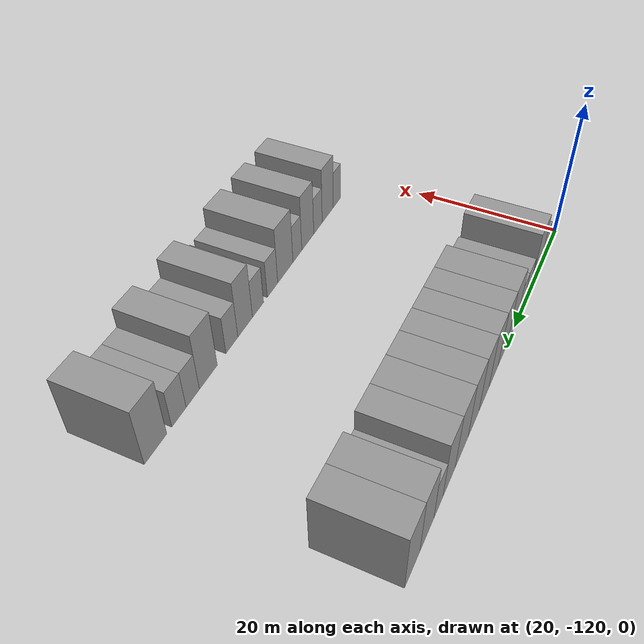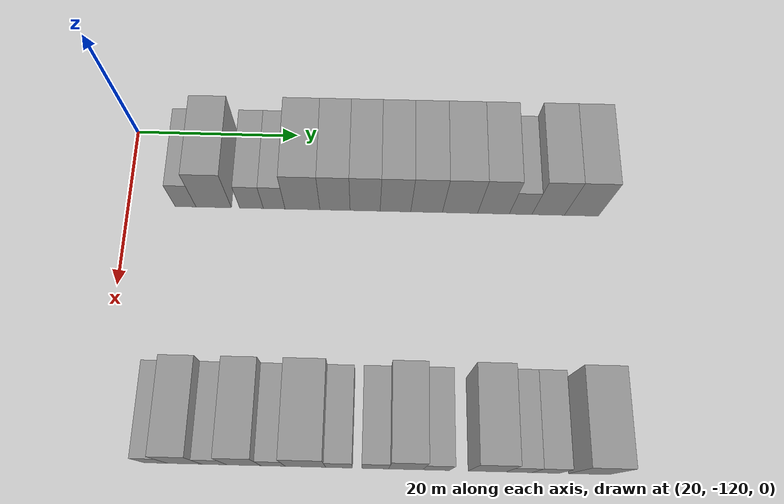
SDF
<sdf version="1.6">
 <world name="default">
  <model name="building_30">
   <static>1</static>
   <pose>25.0000 -113.0198 0 0.000000 0.000000 0.000000</pose>
   <link name="link">
    <pose>0 0 3.00 0 0 0</pose>
    <collision name="collision"><geometry><box><size>10.0000 2.5243 6.0000</size></box></geometry></collision>
    <visual name="visual">
     <cast_shadows>0</cast_shadows>
     <geometry><box><size>10.0000 2.5243 6.0000</size></box></geometry>
     <material>
      <script>
       <uri>model://grey_wall/materials/scripts</uri>
       <uri>model://grey_wall/materials/textures</uri>
       <name>vrc/grey_wall</name>
      </script>
     </material>
    </visual>
   </link>
  </model>
  <model name="building_31">
   <static>1</static>
   <pose>25.0000 -109.6110 0 0.000000 0.000000 0.000000</pose>
   <link name="link">
    <pose>0 0 4.50 0 0 0</pose>
    <collision name="collision"><geometry><box><size>10.0000 4.2934 9.0000</size></box></geometry></collision>
    <visual name="visual">
     <cast_shadows>0</cast_shadows>
     <geometry><box><size>10.0000 4.2934 9.0000</size></box></geometry>
     <material>
      <script>
       <uri>model://grey_wall/materials/scripts</uri>
       <uri>model://grey_wall/materials/textures</uri>
       <name>vrc/grey_wall</name>
      </script>
     </material>
    </visual>
   </link>
  </model>
  <model name="building_32">
   <static>1</static>
   <pose>25.0000 -105.0264 0 0.000000 0.000000 0.000000</pose>
   <link name="link">
    <pose>0 0 3.00 0 0 0</pose>
    <collision name="collision"><geometry><box><size>10.0000 2.8757 6.0000</size></box></geometry></collision>
    <visual name="visual">
     <cast_shadows>0</cast_shadows>
     <geometry><box><size>10.0000 2.8757 6.0000</size></box></geometry>
     <material>
      <script>
       <uri>model://grey_wall/materials/scripts</uri>
       <uri>model://grey_wall/materials/textures</uri>
       <name>vrc/grey_wall</name>
      </script>
     </material>
    </visual>
   </link>
  </model>
  <model name="building_33">
   <static>1</static>
   <pose>25.0000 -102.2784 0 0.000000 0.000000 0.000000</pose>
   <link name="link">
    <pose>0 0 3.00 0 0 0</pose>
    <collision name="collision"><geometry><box><size>10.0000 2.6205 6.0000</size></box></geometry></collision>
    <visual name="visual">
     <cast_shadows>0</cast_shadows>
     <geometry><box><size>10.0000 2.6205 6.0000</size></box></geometry>
     <material>
      <script>
       <uri>model://grey_wall/materials/scripts</uri>
       <uri>model://grey_wall/materials/textures</uri>
       <name>vrc/grey_wall</name>
      </script>
     </material>
    </visual>
   </link>
  </model>
  <model name="building_34">
   <static>1</static>
   <pose>25.0000 -98.8561 0 0.000000 0.000000 0.000000</pose>
   <link name="link">
    <pose>0 0 4.50 0 0 0</pose>
    <collision name="collision"><geometry><box><size>10.0000 4.2241 9.0000</size></box></geometry></collision>
    <visual name="visual">
     <cast_shadows>0</cast_shadows>
     <geometry><box><size>10.0000 4.2241 9.0000</size></box></geometry>
     <material>
      <script>
       <uri>model://grey_wall/materials/scripts</uri>
       <uri>model://grey_wall/materials/textures</uri>
       <name>vrc/grey_wall</name>
      </script>
     </material>
    </visual>
   </link>
  </model>
  <model name="building_35">
   <static>1</static>
   <pose>25.0000 -94.9230 0 0.000000 0.000000 0.000000</pose>
   <link name="link">
    <pose>0 0 4.50 0 0 0</pose>
    <collision name="collision"><geometry><box><size>10.0000 3.6422 9.0000</size></box></geometry></collision>
    <visual name="visual">
     <cast_shadows>0</cast_shadows>
     <geometry><box><size>10.0000 3.6422 9.0000</size></box></geometry>
     <material>
      <script>
       <uri>model://grey_wall/materials/scripts</uri>
       <uri>model://grey_wall/materials/textures</uri>
       <name>vrc/grey_wall</name>
      </script>
     </material>
    </visual>
   </link>
  </model>
  <model name="building_36">
   <static>1</static>
   <pose>25.0000 -91.2906 0 0.000000 0.000000 0.000000</pose>
   <link name="link">
    <pose>0 0 4.50 0 0 0</pose>
    <collision name="collision"><geometry><box><size>10.0000 3.6224 9.0000</size></box></geometry></collision>
    <visual name="visual">
     <cast_shadows>0</cast_shadows>
     <geometry><box><size>10.0000 3.6224 9.0000</size></box></geometry>
     <material>
      <script>
       <uri>model://grey_wall/materials/scripts</uri>
       <uri>model://grey_wall/materials/textures</uri>
       <name>vrc/grey_wall</name>
      </script>
     </material>
    </visual>
   </link>
  </model>
  <model name="building_37">
   <static>1</static>
   <pose>25.0000 -87.6306 0 0.000000 0.000000 0.000000</pose>
   <link name="link">
    <pose>0 0 4.50 0 0 0</pose>
    <collision name="collision"><geometry><box><size>10.0000 3.6977 9.0000</size></box></geometry></collision>
    <visual name="visual">
     <cast_shadows>0</cast_shadows>
     <geometry><box><size>10.0000 3.6977 9.0000</size></box></geometry>
     <material>
      <script>
       <uri>model://grey_wall/materials/scripts</uri>
       <uri>model://grey_wall/materials/textures</uri>
       <name>vrc/grey_wall</name>
      </script>
     </material>
    </visual>
   </link>
  </model>
  <model name="building_38">
   <static>1</static>
   <pose>25.0000 -83.8737 0 0.000000 0.000000 0.000000</pose>
   <link name="link">
    <pose>0 0 4.50 0 0 0</pose>
    <collision name="collision"><geometry><box><size>10.0000 3.8162 9.0000</size></box></geometry></collision>
    <visual name="visual">
     <cast_shadows>0</cast_shadows>
     <geometry><box><size>10.0000 3.8162 9.0000</size></box></geometry>
     <material>
      <script>
       <uri>model://grey_wall/materials/scripts</uri>
       <uri>model://grey_wall/materials/textures</uri>
       <name>vrc/grey_wall</name>
      </script>
     </material>
    </visual>
   </link>
  </model>
  <model name="building_39">
   <static>1</static>
   <pose>25.0000 -79.8392 0 0.000000 0.000000 0.000000</pose>
   <link name="link">
    <pose>0 0 4.50 0 0 0</pose>
    <collision name="collision"><geometry><box><size>10.0000 4.2527 9.0000</size></box></geometry></collision>
    <visual name="visual">
     <cast_shadows>0</cast_shadows>
     <geometry><box><size>10.0000 4.2527 9.0000</size></box></geometry>
     <material>
      <script>
       <uri>model://grey_wall/materials/scripts</uri>
       <uri>model://grey_wall/materials/textures</uri>
       <name>vrc/grey_wall</name>
      </script>
     </material>
    </visual>
   </link>
  </model>
  <model name="building_40">
   <static>1</static>
   <pose>25.0000 -75.8029 0 0.000000 0.000000 0.000000</pose>
   <link name="link">
    <pose>0 0 4.50 0 0 0</pose>
    <collision name="collision"><geometry><box><size>10.0000 3.8200 9.0000</size></box></geometry></collision>
    <visual name="visual">
     <cast_shadows>0</cast_shadows>
     <geometry><box><size>10.0000 3.8200 9.0000</size></box></geometry>
     <material>
      <script>
       <uri>model://grey_wall/materials/scripts</uri>
       <uri>model://grey_wall/materials/textures</uri>
       <name>vrc/grey_wall</name>
      </script>
     </material>
    </visual>
   </link>
  </model>
  <model name="building_41">
   <static>1</static>
   <pose>25.0000 -72.5315 0 0.000000 0.000000 0.000000</pose>
   <link name="link">
    <pose>0 0 3.00 0 0 0</pose>
    <collision name="collision"><geometry><box><size>10.0000 2.7228 6.0000</size></box></geometry></collision>
    <visual name="visual">
     <cast_shadows>0</cast_shadows>
     <geometry><box><size>10.0000 2.7228 6.0000</size></box></geometry>
     <material>
      <script>
       <uri>model://grey_wall/materials/scripts</uri>
       <uri>model://grey_wall/materials/textures</uri>
       <name>vrc/grey_wall</name>
      </script>
     </material>
    </visual>
   </link>
  </model>
  <model name="building_42">
   <static>1</static>
   <pose>25.0000 -69.2048 0 0.000000 0.000000 0.000000</pose>
   <link name="link">
    <pose>0 0 4.50 0 0 0</pose>
    <collision name="collision"><geometry><box><size>10.0000 3.9304 9.0000</size></box></geometry></collision>
    <visual name="visual">
     <cast_shadows>0</cast_shadows>
     <geometry><box><size>10.0000 3.9304 9.0000</size></box></geometry>
     <material>
      <script>
       <uri>model://grey_wall/materials/scripts</uri>
       <uri>model://grey_wall/materials/textures</uri>
       <name>vrc/grey_wall</name>
      </script>
     </material>
    </visual>
   </link>
  </model>
  <model name="building_43">
   <static>1</static>
   <pose>25.0000 -65.2022 0 0.000000 0.000000 0.000000</pose>
   <link name="link">
    <pose>0 0 4.50 0 0 0</pose>
    <collision name="collision"><geometry><box><size>10.0000 4.0749 9.0000</size></box></geometry></collision>
    <visual name="visual">
     <cast_shadows>0</cast_shadows>
     <geometry><box><size>10.0000 4.0749 9.0000</size></box></geometry>
     <material>
      <script>
       <uri>model://grey_wall/materials/scripts</uri>
       <uri>model://grey_wall/materials/textures</uri>
       <name>vrc/grey_wall</name>
      </script>
     </material>
    </visual>
   </link>
  </model>
  <model name="building_141">
   <static>1</static>
   <pose>55.0000 -113.0773 0 0.000000 0.000000 0.000000</pose>
   <link name="link">
    <pose>0 0 3.00 0 0 0</pose>
    <collision name="collision"><geometry><box><size>10.0000 2.5457 6.0000</size></box></geometry></collision>
    <visual name="visual">
     <cast_shadows>0</cast_shadows>
     <geometry><box><size>10.0000 2.5457 6.0000</size></box></geometry>
     <material>
      <script>
       <uri>model://grey_wall/materials/scripts</uri>
       <uri>model://grey_wall/materials/textures</uri>
       <name>vrc/grey_wall</name>
      </script>
     </material>
    </visual>
   </link>
  </model>
  <model name="building_142">
   <static>1</static>
   <pose>55.0000 -109.9770 0 0.000000 0.000000 0.000000</pose>
   <link name="link">
    <pose>0 0 4.50 0 0 0</pose>
    <collision name="collision"><geometry><box><size>10.0000 3.6549 9.0000</size></box></geometry></collision>
    <visual name="visual">
     <cast_shadows>0</cast_shadows>
     <geometry><box><size>10.0000 3.6549 9.0000</size></box></geometry>
     <material>
      <script>
       <uri>model://grey_wall/materials/scripts</uri>
       <uri>model://grey_wall/materials/textures</uri>
       <name>vrc/grey_wall</name>
      </script>
     </material>
    </visual>
   </link>
  </model>
  <model name="building_143">
   <static>1</static>
   <pose>55.0000 -106.7991 0 0.000000 0.000000 0.000000</pose>
   <link name="link">
    <pose>0 0 3.00 0 0 0</pose>
    <collision name="collision"><geometry><box><size>10.0000 2.7008 6.0000</size></box></geometry></collision>
    <visual name="visual">
     <cast_shadows>0</cast_shadows>
     <geometry><box><size>10.0000 2.7008 6.0000</size></box></geometry>
     <material>
      <script>
       <uri>model://grey_wall/materials/scripts</uri>
       <uri>model://grey_wall/materials/textures</uri>
       <name>vrc/grey_wall</name>
      </script>
     </material>
    </visual>
   </link>
  </model>
  <model name="building_144">
   <static>1</static>
   <pose>55.0000 -103.6107 0 0.000000 0.000000 0.000000</pose>
   <link name="link">
    <pose>0 0 4.50 0 0 0</pose>
    <collision name="collision"><geometry><box><size>10.0000 3.6760 9.0000</size></box></geometry></collision>
    <visual name="visual">
     <cast_shadows>0</cast_shadows>
     <geometry><box><size>10.0000 3.6760 9.0000</size></box></geometry>
     <material>
      <script>
       <uri>model://grey_wall/materials/scripts</uri>
       <uri>model://grey_wall/materials/textures</uri>
       <name>vrc/grey_wall</name>
      </script>
     </material>
    </visual>
   </link>
  </model>
  <model name="building_145">
   <static>1</static>
   <pose>55.0000 -100.4602 0 0.000000 0.000000 0.000000</pose>
   <link name="link">
    <pose>0 0 3.00 0 0 0</pose>
    <collision name="collision"><geometry><box><size>10.0000 2.6250 6.0000</size></box></geometry></collision>
    <visual name="visual">
     <cast_shadows>0</cast_shadows>
     <geometry><box><size>10.0000 2.6250 6.0000</size></box></geometry>
     <material>
      <script>
       <uri>model://grey_wall/materials/scripts</uri>
       <uri>model://grey_wall/materials/textures</uri>
       <name>vrc/grey_wall</name>
      </script>
     </material>
    </visual>
   </link>
  </model>
  <model name="building_146">
   <static>1</static>
   <pose>55.0000 -96.9730 0 0.000000 0.000000 0.000000</pose>
   <link name="link">
    <pose>0 0 4.50 0 0 0</pose>
    <collision name="collision"><geometry><box><size>10.0000 4.3495 9.0000</size></box></geometry></collision>
    <visual name="visual">
     <cast_shadows>0</cast_shadows>
     <geometry><box><size>10.0000 4.3495 9.0000</size></box></geometry>
     <material>
      <script>
       <uri>model://grey_wall/materials/scripts</uri>
       <uri>model://grey_wall/materials/textures</uri>
       <name>vrc/grey_wall</name>
      </script>
     </material>
    </visual>
   </link>
  </model>
  <model name="building_147">
   <static>1</static>
   <pose>55.0000 -93.3700 0 0.000000 0.000000 0.000000</pose>
   <link name="link">
    <pose>0 0 3.00 0 0 0</pose>
    <collision name="collision"><geometry><box><size>10.0000 2.8564 6.0000</size></box></geometry></collision>
    <visual name="visual">
     <cast_shadows>0</cast_shadows>
     <geometry><box><size>10.0000 2.8564 6.0000</size></box></geometry>
     <material>
      <script>
       <uri>model://grey_wall/materials/scripts</uri>
       <uri>model://grey_wall/materials/textures</uri>
       <name>vrc/grey_wall</name>
      </script>
     </material>
    </visual>
   </link>
  </model>
  <model name="building_148">
   <static>1</static>
   <pose>55.0000 -89.4993 0 0.000000 0.000000 0.000000</pose>
   <link name="link">
    <pose>0 0 3.00 0 0 0</pose>
    <collision name="collision"><geometry><box><size>10.0000 2.8851 6.0000</size></box></geometry></collision>
    <visual name="visual">
     <cast_shadows>0</cast_shadows>
     <geometry><box><size>10.0000 2.8851 6.0000</size></box></geometry>
     <material>
      <script>
       <uri>model://grey_wall/materials/scripts</uri>
       <uri>model://grey_wall/materials/textures</uri>
       <name>vrc/grey_wall</name>
      </script>
     </material>
    </visual>
   </link>
  </model>
  <model name="building_149">
   <static>1</static>
   <pose>55.0000 -86.2319 0 0.000000 0.000000 0.000000</pose>
   <link name="link">
    <pose>0 0 4.50 0 0 0</pose>
    <collision name="collision"><geometry><box><size>10.0000 3.6498 9.0000</size></box></geometry></collision>
    <visual name="visual">
     <cast_shadows>0</cast_shadows>
     <geometry><box><size>10.0000 3.6498 9.0000</size></box></geometry>
     <material>
      <script>
       <uri>model://grey_wall/materials/scripts</uri>
       <uri>model://grey_wall/materials/textures</uri>
       <name>vrc/grey_wall</name>
      </script>
     </material>
    </visual>
   </link>
  </model>
  <model name="building_150">
   <static>1</static>
   <pose>55.0000 -82.9696 0 0.000000 0.000000 0.000000</pose>
   <link name="link">
    <pose>0 0 3.00 0 0 0</pose>
    <collision name="collision"><geometry><box><size>10.0000 2.8747 6.0000</size></box></geometry></collision>
    <visual name="visual">
     <cast_shadows>0</cast_shadows>
     <geometry><box><size>10.0000 2.8747 6.0000</size></box></geometry>
     <material>
      <script>
       <uri>model://grey_wall/materials/scripts</uri>
       <uri>model://grey_wall/materials/textures</uri>
       <name>vrc/grey_wall</name>
      </script>
     </material>
    </visual>
   </link>
  </model>
  <model name="building_151">
   <static>1</static>
   <pose>55.0000 -77.5376 0 0.000000 0.000000 0.000000</pose>
   <link name="link">
    <pose>0 0 4.50 0 0 0</pose>
    <collision name="collision"><geometry><box><size>10.0000 3.9894 9.0000</size></box></geometry></collision>
    <visual name="visual">
     <cast_shadows>0</cast_shadows>
     <geometry><box><size>10.0000 3.9894 9.0000</size></box></geometry>
     <material>
      <script>
       <uri>model://grey_wall/materials/scripts</uri>
       <uri>model://grey_wall/materials/textures</uri>
       <name>vrc/grey_wall</name>
      </script>
     </material>
    </visual>
   </link>
  </model>
  <model name="building_152">
   <static>1</static>
   <pose>55.0000 -74.1288 0 0.000000 0.000000 0.000000</pose>
   <link name="link">
    <pose>0 0 3.00 0 0 0</pose>
    <collision name="collision"><geometry><box><size>10.0000 2.8282 6.0000</size></box></geometry></collision>
    <visual name="visual">
     <cast_shadows>0</cast_shadows>
     <geometry><box><size>10.0000 2.8282 6.0000</size></box></geometry>
     <material>
      <script>
       <uri>model://grey_wall/materials/scripts</uri>
       <uri>model://grey_wall/materials/textures</uri>
       <name>vrc/grey_wall</name>
      </script>
     </material>
    </visual>
   </link>
  </model>
  <model name="building_153">
   <static>1</static>
   <pose>55.0000 -71.2451 0 0.000000 0.000000 0.000000</pose>
   <link name="link">
    <pose>0 0 3.00 0 0 0</pose>
    <collision name="collision"><geometry><box><size>10.0000 2.9392 6.0000</size></box></geometry></collision>
    <visual name="visual">
     <cast_shadows>0</cast_shadows>
     <geometry><box><size>10.0000 2.9392 6.0000</size></box></geometry>
     <material>
      <script>
       <uri>model://grey_wall/materials/scripts</uri>
       <uri>model://grey_wall/materials/textures</uri>
       <name>vrc/grey_wall</name>
      </script>
     </material>
    </visual>
   </link>
  </model>
  <model name="building_154">
   <static>1</static>
   <pose>55.0000 -66.6125 0 0.000000 0.000000 0.000000</pose>
   <link name="link">
    <pose>0 0 4.50 0 0 0</pose>
    <collision name="collision"><geometry><box><size>10.0000 4.3260 9.0000</size></box></geometry></collision>
    <visual name="visual">
     <cast_shadows>0</cast_shadows>
     <geometry><box><size>10.0000 4.3260 9.0000</size></box></geometry>
     <material>
      <script>
       <uri>model://grey_wall/materials/scripts</uri>
       <uri>model://grey_wall/materials/textures</uri>
       <name>vrc/grey_wall</name>
      </script>
     </material>
    </visual>
   </link>
  </model>
 </world>
</sdf>
